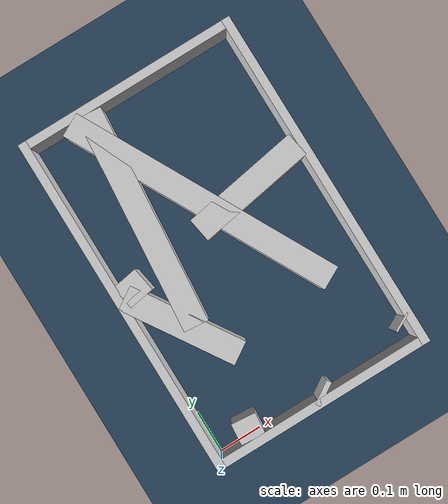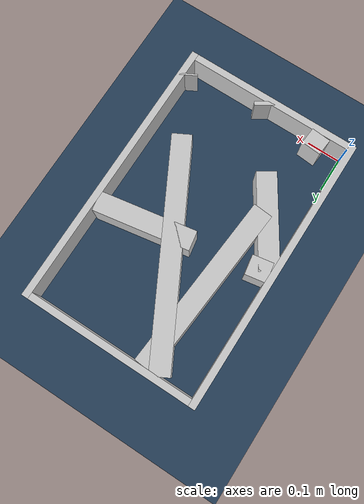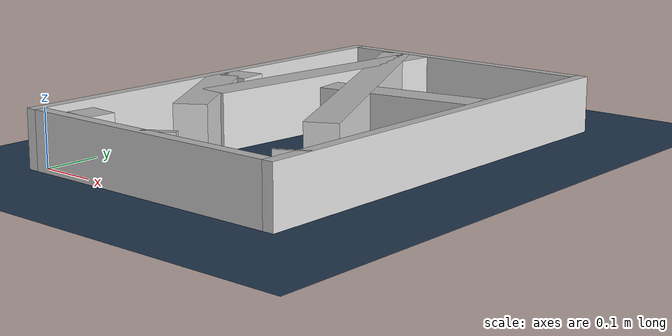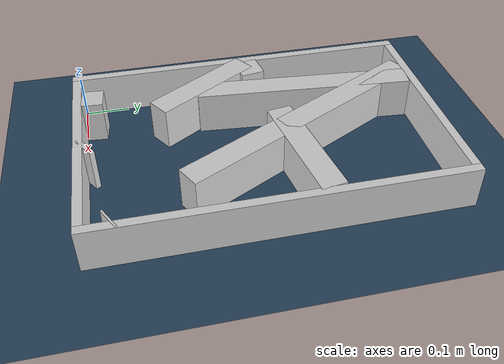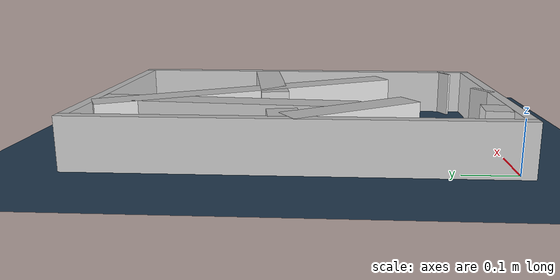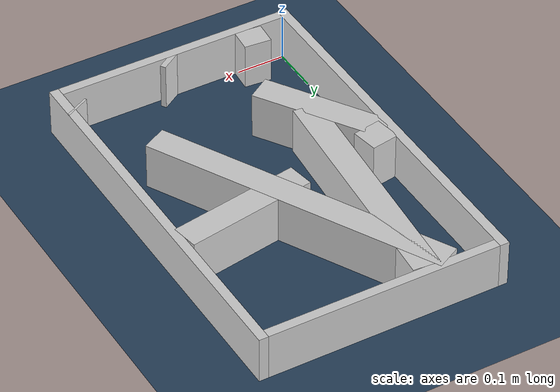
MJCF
<?xml version="1.0" ?>
<mujoco model="generated_real_template">
  <compiler angle="degree"/>
  <option timestep="0.002" integrator="implicitfast" iterations="100" cone="elliptic"/>
  <default>
    <geom density="1"/>
  </default>
  <asset>
    <texture builtin="gradient" height="3072" rgb1="0.3 0.5 0.7" rgb2="0 0 0" type="skybox" width="512"/>
    <texture builtin="checker" height="300" mark="edge" markrgb="0.8 0.8 0.8" name="groundplane" rgb1="0.2 0.3 0.4" rgb2="0.1 0.2 0.3" type="2d" width="300"/>
    <material name="groundplane" reflectance="0.2" texrepeat="5 5" texture="groundplane" texuniform="true"/>
  </asset>
  <worldbody>
    <light dir="0 0 -1" directional="true" pos="0 0 1.5"/>
    <geom name="floor" type="plane" condim="4" friction="0.5 0.005 0.001" material="groundplane" size="0 0 0.05"/>
    <body name="walls">
      <geom name="wall_boundary_left" type="box" condim="4" friction="1.0 0.005 0.0001" rgba="0.8 0.8 0.8 1" pos="-0.010000 0.387500 0.050000" euler="0 0 0.000000" size="0.010000 0.407500 0.050000"/>
      <geom name="wall_boundary_right" type="box" condim="4" friction="1.0 0.005 0.0001" rgba="0.8 0.8 0.8 1" pos="0.500000 0.387500 0.050000" euler="0 0 0.000000" size="0.010000 0.407500 0.050000"/>
      <geom name="wall_boundary_bottom" type="box" condim="4" friction="1.0 0.005 0.0001" rgba="0.8 0.8 0.8 1" pos="0.245000 -0.010000 0.050000" euler="0 0 0.000000" size="0.245000 0.010000 0.050000"/>
      <geom name="wall_boundary_top" type="box" condim="4" friction="1.0 0.005 0.0001" rgba="0.8 0.8 0.8 1" pos="0.245000 0.785000 0.050000" euler="0 0 0.000000" size="0.245000 0.010000 0.050000"/>
      <geom name="wall_inner_1_1" type="box" condim="4" friction="1.0 0.005 0.0001" rgba="0.8 0.8 0.8 1" pos="0.249395 0.489213 0.050000" euler="0 0 -62.076665" size="0.323444 0.028500 0.050000"/>
      <geom name="wall_inner_1_2" type="box" condim="4" friction="1.0 0.005 0.0001" rgba="0.8 0.8 0.8 1" pos="0.483682 0.047158 0.050000" euler="0 0 -62.076665" size="0.002425 0.028500 0.050000"/>
      <geom name="wall_inner_2_1" type="box" condim="4" friction="1.0 0.005 0.0001" rgba="0.8 0.8 0.8 1" pos="0.077960 0.284326 0.050000" euler="0 0 -57.232096" size="0.136713 0.028500 0.050000"/>
      <geom name="wall_inner_2_2" type="box" condim="4" friction="1.0 0.005 0.0001" rgba="0.8 0.8 0.8 1" pos="0.257780 0.004955 0.050000" euler="0 0 -57.232096" size="0.005893 0.028500 0.050000"/>
      <geom name="wall_inner_3_1" type="box" condim="4" friction="1.0 0.005 0.0001" rgba="0.8 0.8 0.8 1" pos="0.352110 0.460843 0.050000" euler="0 0 -170.406445" size="0.139846 0.028500 0.050000"/>
      <geom name="wall_inner_3_2" type="box" condim="4" friction="1.0 0.005 0.0001" rgba="0.8 0.8 0.8 1" pos="0.029841 0.406373 0.050000" euler="0 0 -170.406445" size="0.030264 0.028500 0.050000"/>
      <geom name="wall_inner_4_1" type="box" condim="4" friction="1.0 0.005 0.0001" rgba="0.8 0.8 0.8 1" pos="0.124147 0.521299 0.050000" euler="0 0 -94.845267" size="0.254611 0.028500 0.050000"/>
      <geom name="wall_inner_4_2" type="box" condim="4" friction="1.0 0.005 0.0001" rgba="0.8 0.8 0.8 1" pos="0.082039 0.024553 0.050000" euler="0 0 -94.845267" size="0.024641 0.028500 0.050000"/>
    </body>
  </worldbody>
</mujoco>
